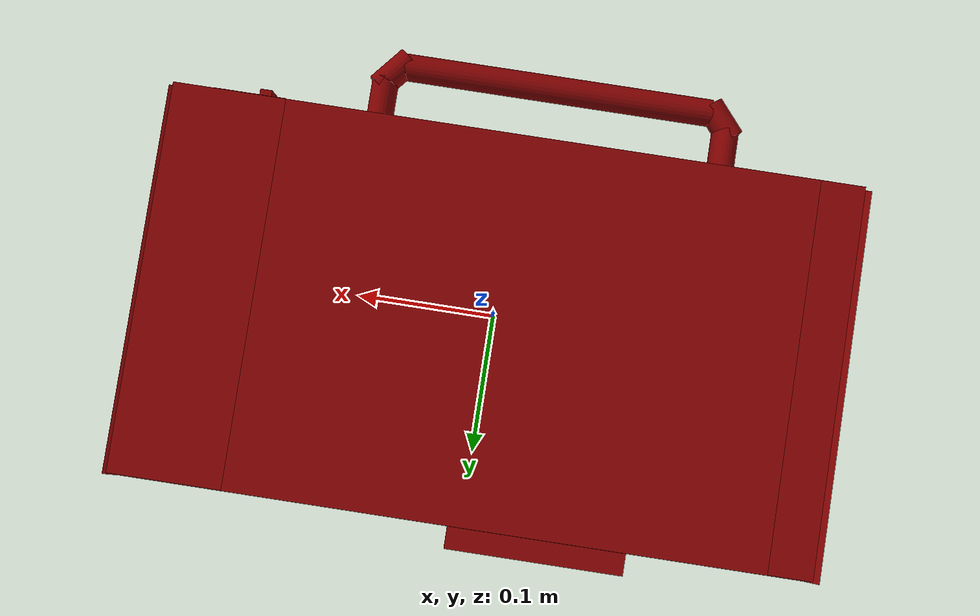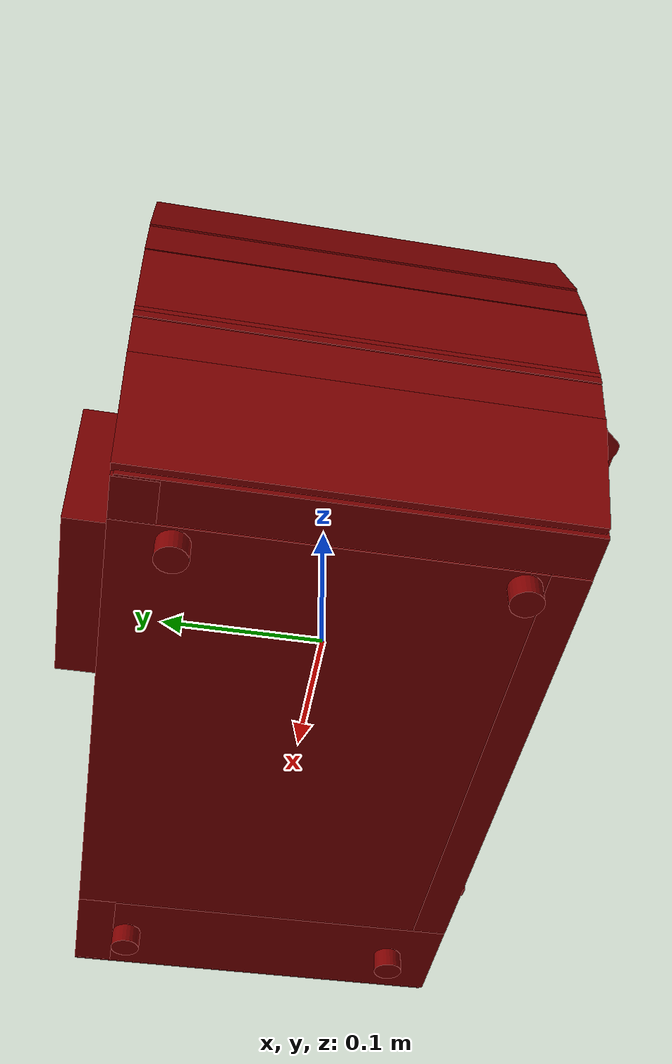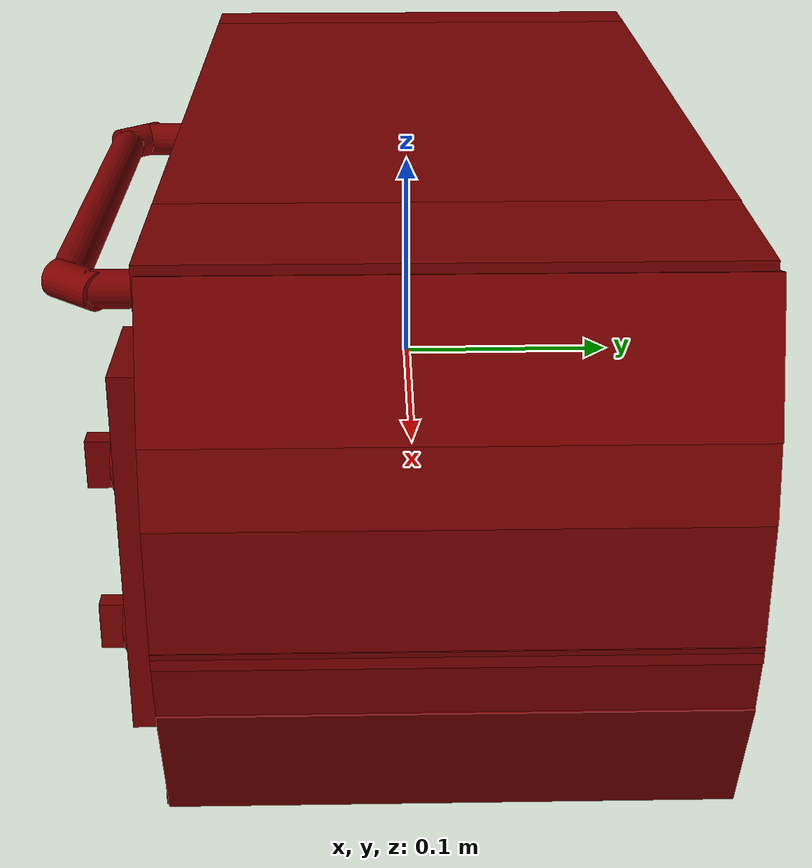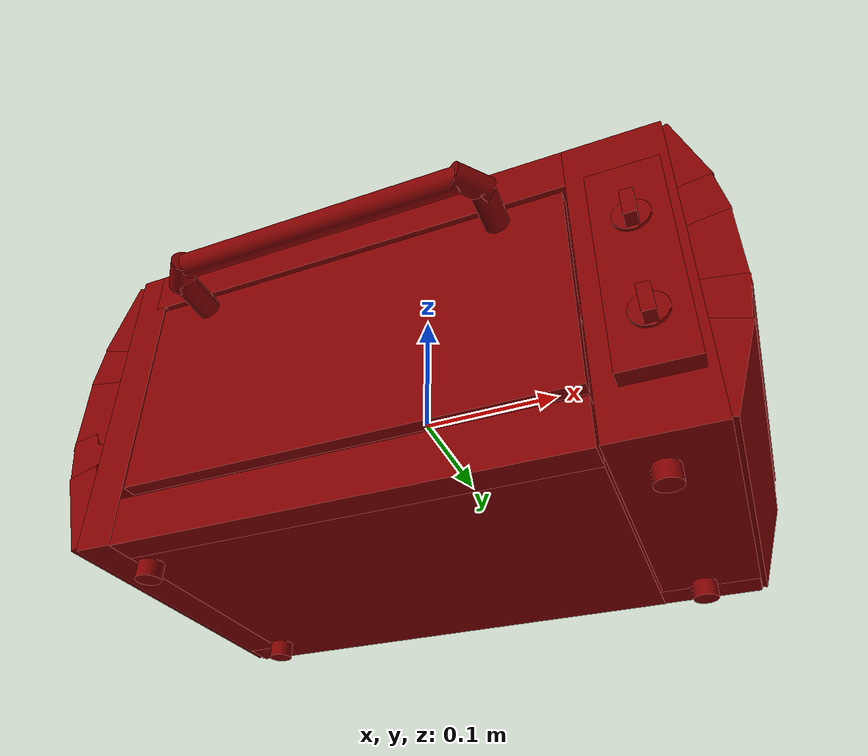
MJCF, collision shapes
<?xml version='1.0' encoding='UTF-8'?>
<mujoco model="model">
  <option timestep="0.002" gravity="0.0 0.0 -9.81"/>
  <compiler angle="radian"/>
  <asset>
    <mesh file="visuals/door.obj" name="door_vis"/>
    <mesh file="visuals/knob_temp.obj" name="knob_temp_vis"/>
    <mesh file="visuals/knob_time.obj" name="knob_time_vis"/>
    <mesh file="visuals/rack0.obj" name="rack0_vis"/>
    <mesh file="visuals/Body001.obj" name="Body001_vis"/>
    <mesh file="visuals/window.obj" name="window_vis"/>
    <texture file="visuals/T_BC001.png" name="Body001_material" type="2d"/>
    <material name="Body001_material" rgba="1 1 1 1.0" texture="Body001_material" shininess="0.1" specular="5"/>
    <texture file="visuals/T_BC001.png" name="door_material" type="2d"/>
    <material name="door_material" rgba="1 1 1 1.0" texture="door_material" shininess="0.1" specular="5"/>
    <material name="window_material" rgba="0.015459451824426651 0.015459451824426651 0.015459451824426651 0.800000011920929" shininess="0.4472135901451111" specular="0.3103448502657381"/>
    <texture file="visuals/T_BC001.png" name="knob_temp_material" type="2d"/>
    <material name="knob_temp_material" rgba="1 1 1 1.0" texture="knob_temp_material" shininess="0.1" specular="5"/>
    <texture file="visuals/T_BC001.png" name="knob_time_material" type="2d"/>
    <material name="knob_time_material" rgba="1 1 1 1.0" texture="knob_time_material" shininess="0.1" specular="5"/>
    <texture file="visuals/T_BC001.png" name="rack0_material" type="2d"/>
    <material name="rack0_material" rgba="1 1 1 1.0" texture="rack0_material" shininess="0.1" specular="5"/>
  </asset>
  <default>
    <default class="visual">
      <geom conaffinity="0" contype="0" group="1" type="mesh"/>
    </default>
    <default class="collision">
      <geom group="0" rgba="0.5 0 0 0.5"/>
    </default>
    <default class="spawn">
      <geom group="0" rgba="1 1 1 0.5" contype="0" conaffinity="0"/>
      <site group="0" rgba="1 1 1 0.5"/>
    </default>
    <default class="region">
      <geom group="1" conaffinity="0" contype="0" rgba="0 1 0 0"/>
    </default>
  </default>
  <worldbody>
    <body>
      <body name="object">
        <geom mesh="Body001_vis" type="mesh" solimp="0.998 0.998 0.001" solref="0.001 1" friction="0.95 0.3 0.1" class="visual" material="Body001_material"/>
        <geom class="collision" type="box" pos="-0.19313782 0.01263959 0.00682959" size="0.0132620669901371 0.11639637500047684 0.11938319355249405" quat="1.0 0.0 0.0 0.0"/>
        <geom class="collision" type="box" pos="-0.02281487 0.01275741 0.10912137" size="0.16505663096904755 0.11654280871152878 0.017090940847992897" quat="1.0 0.0 0.0 0.0"/>
        <geom class="collision" type="box" pos="0.17440797 0.01259228 0.00683254" size="0.03387425094842911 0.1164436861872673 0.11937980353832245" quat="1.0 0.0 0.0 0.0"/>
        <geom class="collision" type="box" pos="-0.02027703 0.02402374 -0.09597147" size="0.15913398563861847 0.10649477690458298 0.017092784866690636" quat="1.0 0.0 0.0 0.0"/>
        <geom class="collision" type="box" pos="-0.02027703 -0.09329181 -0.09599694" size="0.15913242101669312 0.010435185395181179 0.017118243500590324" quat="1.0 0.0 0.0 0.0"/>
        <geom class="collision" type="box" pos="0.00123719 0.11909252 0.00409053" size="0.20646774768829346 0.01142850611358881 0.11686260998249054" quat="1.0 0.0 0.0 0.0"/>
        <geom class="collision" type="box" pos="-0.05112423 0.14181501 0.00795732" size="0.05991698428988457 0.017545338720083237 0.04792996868491173" quat="1.0 0.0 0.0 0.0"/>
        <geom class="collision" type="cylinder" pos="-0.17020079 -0.07196135 -0.11980785" size="0.008731570094823837 0.005915897432714701" quat="1.0 0.0 0.0 0.0"/>
        <geom class="collision" type="cylinder" pos="-0.17020079 0.09877268 -0.11980785" size="0.008604285307228565 0.005829658359289169" quat="1.0 0.0 0.0 0.0"/>
        <geom class="collision" type="cylinder" pos="0.17020077 0.09877268 -0.11980785" size="0.008771192282438278 0.0059427423402667046" quat="1.0 0.0 0.0 0.0"/>
        <geom class="collision" type="cylinder" pos="0.17020077 -0.07196135 -0.11980785" size="0.00872209295630455 0.005909476429224014" quat="1.0 0.0 0.0 0.0"/>
        <geom class="collision" type="box" pos="0.17856170 -0.10627778 0.00087275" size="0.02398865297436714 0.01016685925424099 0.07881242781877518" quat="1.0 0.0 0.0 0.0"/>
        <geom class="collision" type="box" pos="-0.17726386 0.00459643 0.00591957" size="0.0026083216071128845 0.08229793608188629 0.005194200202822685" quat="1.0 0.0 0.0 0.0"/>
        <geom class="collision" type="box" pos="0.13772649 0.00459643 0.00591957" size="0.002608322072774172 0.08229795843362808 0.005194200202822685" quat="1.0 0.0 0.0 0.0"/>
        <geom class="collision" type="box" pos="0.20827234 0.01404855 0.08947274" size="0.031018467620015144 0.1166231706738472 0.013800287619233131" quat="0.8102489709854126 -5.2191286909657533e-14 0.586085855960846 7.87458489526216e-08"/>
        <geom class="collision" type="box" pos="0.22126094 0.01404857 0.00297694" size="0.013800323940813541 0.11662311106920242 0.03101847507059574" quat="1.0 0.0 0.0 0.0"/>
        <geom class="collision" type="box" pos="0.21912467 0.01404856 0.04665209" size="0.01675400510430336 0.1166231706738472 0.013800288550555706" quat="0.7636898159980774 6.923360729160777e-08 0.6455833911895752 -5.975351768938708e-08"/>
        <geom class="collision" type="box" pos="0.20827234 0.01404856 -0.07740358" size="0.031018467620015144 0.1166231706738472 0.013800287619233131" quat="9.720939431190345e-08 -0.8102489709854126 9.692686120388316e-08 -0.586085855960846"/>
        <geom class="collision" type="box" pos="0.21912467 0.01404855 -0.03458294" size="0.01675400510430336 0.1166231706738472 0.013800288550555706" quat="1.366998390039953e-07 -0.7636898159980774 -1.9305502974020783e-08 -0.6455833911895752"/>
        <geom class="collision" type="box" pos="-0.20820147 0.01404856 0.08947274" size="0.031018467620015144 0.1166231706738472 0.013800288550555706" quat="7.134492108207269e-08 0.5860857367515564 -5.353433252253126e-09 -0.8102490305900574"/>
        <geom class="collision" type="box" pos="-0.22119007 0.01404855 0.00297694" size="0.013800350949168205 0.11662314087152481 0.03101847507059574" quat="1.0 0.0 0.0 0.0"/>
        <geom class="collision" type="box" pos="-0.21905380 0.01404856 0.04665209" size="0.01675400324165821 0.1166231706738472 0.013800288550555706" quat="1.1311075809317117e-07 -0.6455833315849304 1.1433898094992401e-07 0.7636898159980774"/>
        <geom class="collision" type="box" pos="-0.20820147 0.01404855 -0.07740358" size="0.031018467620015144 0.1166231706738472 0.013800288550555706" quat="0.5860857367515564 -1.936800231305824e-07 -0.8102490305900574 2.72240239240773e-08"/>
        <geom class="collision" type="box" pos="-0.21905380 0.01404857 -0.03458294" size="0.01675400324165821 0.1166231706738472 0.013800288550555706" quat="0.6455833315849304 -6.523433171423676e-08 -0.7636898159980774 6.523433171423676e-08"/>
        <body name="door">
          <joint axis="1.0 0.0 0.0" pos="-0.01995357 -0.10324334 -0.07849067" limited="true" name="door_joint" range="0.0 1.4707963267948966" type="hinge" damping="1" frictionloss="1" armature=".01" stiffness="0.1" springref="-1"/>
          <geom mesh="door_vis" type="mesh" solimp="0.998 0.998 0.001" solref="0.001 1" friction="0.95 0.3 0.1" class="visual" material="door_material"/>
          <geom class="collision" type="cylinder" pos="-0.01979148 -0.15133762 0.07113354" size="0.008694443851709366 0.10181060433387756" quat="0.7071068286895752 -0.0 0.7071067690849304 0.0" name="door_handle_main"/>
          <geom class="collision" type="cylinder" pos="-0.13291208 -0.12427849 0.07146187" size="0.008688891306519508 0.016764547675848007" quat="0.5 -0.5 0.4999999701976776 0.5"/>
          <geom class="collision" type="cylinder" pos="0.09323877 -0.12427849 0.07146187" size="0.008688891306519508 0.016764547675848007" quat="0.5 -0.5 -0.4999999701976776 -0.5"/>
          <geom class="collision" type="box" pos="-0.02025445 -0.09873726 0.00808541" size="0.15800711512565613 0.0052765896543860435 0.07882996648550034" quat="1.0 0.0 0.0 0.0" name="door_main"/>
          <geom class="collision" type="cylinder" pos="0.08815903 -0.14586738 0.07146187" size="0.008688891306519508 0.013618139550089836" quat="0.29883623123168945 -0.6408563852310181 -0.29883623123168945 -0.6408563852310181"/>
          <geom class="collision" type="cylinder" pos="-0.12892430 -0.14598365 0.07146187" size="0.008688891306519508 0.012680571526288986" quat="0.29883629083633423 -0.6408565044403076 0.2988361716270447 0.6408562660217285"/>
          <body name="window">
            <geom mesh="window_vis" type="mesh" solimp="0.998 0.998 0.001" solref="0.001 1" friction="0.95 0.3 0.1" class="visual" material="window_material"/>
            <geom class="collision" type="box" pos="-0.01947528 -0.09857929 -0.00565994" size="0.15650543570518494 0.0017487166915088892 0.059822384268045425" quat="1.0 0.0 0.0 0.0"/>
          </body>
        </body>
        <body name="knob_temp">
          <joint axis="0.0 1.0 0.0" pos="0.17927466 -0.12133041 0.03283151" limited="true" name="knob_temp_joint" range="0.0 5.532693728822024" type="hinge" damping="0.05" armature="1" frictionloss="0.75"/>
          <geom mesh="knob_temp_vis" type="mesh" solimp="0.998 0.998 0.001" solref="0.001 1" friction="0.95 0.3 0.1" class="visual" material="knob_temp_material"/>
          <geom class="collision" type="cylinder" pos="0.17918316 -0.11840467 0.03292466" size="0.012027342803776264 0.001170672127045691" quat="0.7071067094802856 0.7071068286895752 0.0 0.0" friction="100 0.5 0.01"/>
          <geom class="collision" type="box" pos="0.17921288 -0.12481621 0.03307112" size="0.004090623464435339 0.0053969379514455795 0.010216381400823593" quat="1.0 0.0 0.0 0.0" name="knob_temp_main" friction="100 0.5 0.01"/>
        </body>
        <body name="knob_time">
          <joint axis="0.0 1.0 0.0" pos="0.17913710 -0.12133041 -0.04127137" limited="true" name="knob_time_joint" range="0.0 5.532693728822024" type="hinge" damping="0.05" armature="1" frictionloss="0.75"/>
          <geom mesh="knob_time_vis" type="mesh" solimp="0.998 0.998 0.001" solref="0.001 1" friction="0.95 0.3 0.1" class="visual" material="knob_time_material"/>
          <geom class="collision" type="cylinder" pos="0.17904820 -0.11851463 -0.04173459" size="0.012027342803776264 0.001214546849951148" quat="0.7071067094802856 0.7071068286895752 0.0 0.0" friction="100 0.5 0.01"/>
          <geom class="collision" type="box" pos="0.17907792 -0.12492673 -0.04209227" size="0.010198763571679592 0.005184647161513567 0.004046327900141478" quat="0.6990519762039185 -1.865535637080029e-08 -0.7150708436965942 -6.244668782073859e-08" name="knob_time_main" friction="100 0.5 0.01"/>
        </body>
        <body name="rack0">
          <geom class="region" name="reg_rack0" type="box" pos="-0.019700674999999987 0.010994425000000002 0.053936935000000005" size="0.15772123500000002 0.072367945 0.037479025"/>
          <joint axis="0.0 -1.0 0.0" pos="-0.01952182 0.01122013 0.01415987" limited="true" name="rack0_joint" range="0.0 0.16" type="slide" damping="1" frictionloss="1" armature=".01" stiffness="0.05"/>
          <geom mesh="rack0_vis" type="mesh" solimp="0.998 0.998 0.001" solref="0.001 1" friction="0.95 0.3 0.1" class="visual" material="rack0_material"/>
          <geom class="collision" type="box" pos="-0.01952183 0.01068016 0.01445563" size="0.1578701287508011 0.07277391850948334 0.0012083237525075674" quat="1.0 0.0 0.0 0.0"/>
        </body>
        <geom class="region" name="reg_int" type="box" pos="-0.019409240000000008 0.0072043249999999975 0.006568800000000007" size="0.15262562000000002 0.098631105 0.08306633"/>
        <geom class="region" name="reg_main" type="box" pos="0.0 0.021446799999999995 0.0" size="0.23749782 0.13891354 0.12721234"/>
      </body>
    </body>
  </worldbody>
  <actuator>
    <motor name="door_joint_actuator" joint="door_joint" gear="50"/>
    <motor name="knob_temp_joint_actuator" joint="knob_temp_joint" gear="50"/>
    <motor name="knob_time_joint_actuator" joint="knob_time_joint" gear="50"/>
    <motor name="rack0_joint_actuator" joint="rack0_joint" gear="50"/>
  </actuator>
</mujoco>
